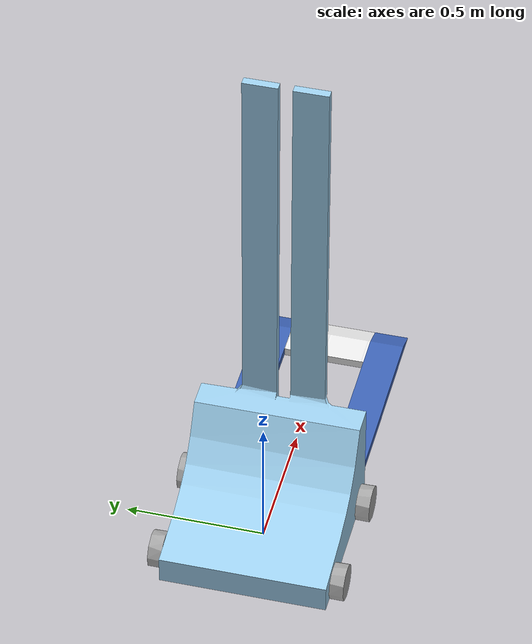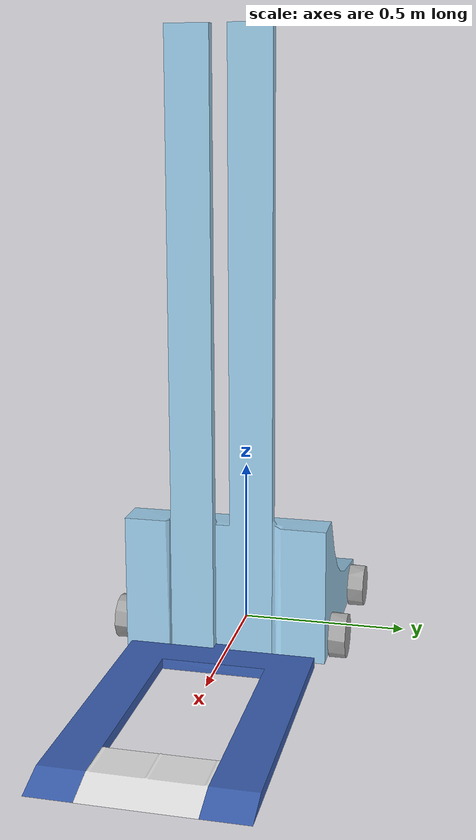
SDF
<?xml version="1.0" ?>
<!-- Generated using onshape-to-robot -->
<!-- Onshape https://cad.onshape.com/documents/f21e4e7fa37d441c582a939b/w/88593c83c7507020b659a8e4/e/9b3ba83a22e3af9be643551f -->
<sdf version="1.7">
  <model name="forklift">
    <plugin filename="ignition-gazebo-velocity-control-system"
        name="ignition::gazebo::systems::VelocityControl">
        <topic>model/forklift/cmd_vel</topic>
      </plugin>

    <frame name="lidar_frame" attached_to='body'>
      <pose>0.8 0 0.5 0 0 0</pose>
    </frame>
    <!-- Link body -->
    <link name="body">
      <inertial>
        <pose>0.108872 -1.9711e-07 0.248955 0 0 0</pose>
        <mass>5000</mass>
        <inertia>
          <ixx>743.717</ixx>
          <ixy>7.94891e-06</ixy>
          <ixz>-149.673</ixz>
          <iyy>759.431</iyy>
          <iyz>0.00072338</iyz>
          <izz>282.509</izz>
        </inertia>
      </inertial>
      <pose>0 0 0 0 -0 0</pose>

    <sensor name='gpu_lidar' type='gpu_lidar'>
    <plugin name="gazebo_ros_ray_sensor" filename="libgazebo_ros_ray_sensor.so">
    <pose >1.7 0 0.5 0 0 0</pose>
    <topic>lidar</topic>
    <update_rate>1000</update_rate>
    <ray>
        <scan>
            <horizontal>
                <samples>640</samples>
                <resolution>1</resolution>
                <min_angle>-1.396263</min_angle>
                <max_angle>1.396263</max_angle>
            </horizontal>
            <vertical>
                <samples>1</samples>
                <resolution>0.01</resolution>
                <min_angle>0</min_angle>
                <max_angle>0</max_angle>
            </vertical>
        </scan>
        <range>
            <min>0.08</min>
            <max>10.0</max>
            <resolution>0.01</resolution>
        </range>
    </ray>
    <always_on>1</always_on>
    <visualize>true</visualize>
    </plugin>
    </sensor>

      <!-- Part body -->
      <visual name="body_visual_mesh_1">
        <pose relative_to="body">-0.00799562 -3.71942e-17 0 0 -0 0</pose>
        <geometry>
          <mesh>
            <uri>model://forklift/assets/body1.stl</uri>
          </mesh>
        </geometry>
        <material>
          <ambient>0.615686 0.811765 0.929412 1</ambient>
          <diffuse>0.615686 0.811765 0.929412 1</diffuse>
          <specular>0.1 0.1 0.1 1</specular>
          <emissive>0 0 0 0</emissive>
        </material>
      </visual>
      <collision name="body_collision_mesh_2">
        <pose relative_to="body">-0.00799562 -3.71942e-17 0 0 -0 0</pose>
        <geometry>
          <mesh>
            <uri>model://forklift/assets/body1.stl</uri>
          </mesh>
        </geometry>
      </collision>
    </link>

    <!-- NavSatSensor Link (GPS) -->
    <link name="gps_link">
      <pose>0 0 1.2 0 0 0</pose>
      <inertial>
        <mass>0.01</mass>
        <inertia>
          <ixx>0.00001</ixx>
          <ixy>0</ixy>
          <ixz>0</ixz>
          <iyy>0.00001</iyy>
          <iyz>0</iyz>
          <izz>0.00001</izz>
        </inertia>
      </inertial>
      <sensor name="navsat_sensor" type="navsat">
        <pose>0 0 0 0 0 0</pose>
        <always_on>1</always_on>
        <update_rate>1</update_rate>
        <visualize>false</visualize>
        <topic>forklift_pos</topic>
        <navsat>
          <noise>
            <type>gaussian</type>
            <mean>0.0</mean>
            <stddev>0.00001</stddev>
          </noise>
        </navsat>
      </sensor>
    </link>

    <joint name="gps_joint" type="fixed">
      <parent>body</parent>
      <child>gps_link</child>
      <pose>0 0 0 0 0 0</pose>
    </joint>

    <link name="camera_link">
      <sensor name="camera" type="camera">
          <camera>
            <horizontal_fov>1.047</horizontal_fov>
            <image>
              <width>640</width>
              <height>480</height>
            </image>
            <clip>
              <near>0.1</near>
              <far>100</far>
            </clip>
          </camera>
          <always_on>1</always_on>
          <update_rate>30</update_rate>
          <visualize>true</visualize>
          <topic>camera</topic>
        </sensor>
      </link>

    <!-- Joint from body to camera -->
    <joint name="camera_joint" type="fixed">
      <pose relative_to="fork">0.0 0.0 0.4 0 0 0</pose>
      <parent>fork</parent>
      <child>camera_link</child>
    </joint>

    <!-- Link wheel -->
    <link name="wheel">
      <inertial>
        <pose>-2.21045e-15 -2.33218e-16 -0.0703848 0 0 0</pose>
        <mass>0.816749</mass>
        <inertia>
          <ixx>0.0011595</ixx>
          <ixy>0</ixy>
          <ixz>0</ixz>
          <iyy>0.0011595</iyy>
          <iyz>0</iyz>
          <izz>0.00147113</izz>
        </inertia>
      </inertial>
      <pose relative_to="leftFrontWheel">0 0 0 0 -0 0</pose>
      <!-- Part wheel -->
      <visual name="wheel_visual_mesh_1">
        <pose relative_to="wheel">0 0 -0.1025 -1.5708 -0 0</pose>
        <geometry>
          <mesh>
            <uri>model://forklift/assets/wheel1.stl</uri>
          </mesh>
        </geometry>
        <material>
          <ambient>0.647059 0.647059 0.647059 1</ambient>
          <diffuse>0.647059 0.647059 0.647059 1</diffuse>
          <specular>0.1 0.1 0.1 1</specular>
          <emissive>0 0 0 0</emissive>
        </material>
      </visual>
      <collision name="wheel_collision_mesh_2">
        <pose relative_to="wheel">0 0 -0.1025 -1.5708 -0 0</pose>
        <geometry>
          <mesh>
            <uri>model://forklift/assets/wheel1.stl</uri>
          </mesh>
        </geometry>
      </collision>
    </link>

    <!-- Joint from body to wheel -->
    <joint name="leftFrontWheel" type="revolute">
      <pose relative_to="body">0.192004 0.25 0.05 1.5708 -0 0</pose>
      <parent>body</parent>
      <child>wheel</child>
      <axis>
        <xyz>0 0 1</xyz>
        <limit>
          <effort>10</effort>
          <velocity>10</velocity>
          <lower>-3.141592653589793</lower>
          <upper>3.141592653589793</upper>
        </limit>
        <dynamics>
          <friction>0.0</friction>
          <damping>0.0</damping>
        </dynamics>
      </axis>
    </joint>

    <!-- Link wheel_2 -->
    <link name="wheel_2">
      <inertial>
        <pose>-2.21045e-15 -2.33218e-16 -0.0703848 0 0 0</pose>
        <mass>0.816749</mass>
        <inertia>
          <ixx>0.0011595</ixx>
          <ixy>0</ixy>
          <ixz>0</ixz>
          <iyy>0.0011595</iyy>
          <iyz>0</iyz>
          <izz>0.00147113</izz>
        </inertia>
      </inertial>
      <pose relative_to="leftBackWheel">0 0 0 0 -0 0</pose>
      <!-- Part wheel_2 -->
      <visual name="wheel_2_visual_mesh_1">
        <pose relative_to="wheel_2">0 0 -0.1025 -1.5708 -0 0</pose>
        <geometry>
          <mesh>
            <uri>model://forklift/assets/wheel1.stl</uri>
          </mesh>
        </geometry>
        <material>
          <ambient>0.647059 0.647059 0.647059 1</ambient>
          <diffuse>0.647059 0.647059 0.647059 1</diffuse>
          <specular>0.1 0.1 0.1 1</specular>
          <emissive>0 0 0 0</emissive>
        </material>
      </visual>
      <collision name="wheel_2_collision_mesh_2">
        <pose relative_to="wheel_2">0 0 -0.1025 -1.5708 -0 0</pose>
        <geometry>
          <mesh>
            <uri>model://forklift/assets/wheel1.stl</uri>
          </mesh>
        </geometry>
      </collision>
    </link>

    <!-- Joint from body to wheel_2 -->
    <joint name="leftBackWheel" type="revolute">
      <pose relative_to="body">-0.207996 0.25 0.05 1.5708 -0 0</pose>
      <parent>body</parent>
      <child>wheel_2</child>
      <axis>
        <xyz>0 0 1</xyz>
        <limit>
          <effort>10</effort>
          <velocity>10</velocity>
          <lower>-3.141592653589793</lower>
          <upper>3.141592653589793</upper>
        </limit>
        <dynamics>
          <friction>0.0</friction>
          <damping>0.0</damping>
        </dynamics>
      </axis>
    </joint>

    <!-- Link wheel_3 -->
    <link name="wheel_3">
      <inertial>
        <pose>-2.21045e-15 -2.33218e-16 -0.0703848 0 0 0</pose>
        <mass>0.816749</mass>
        <inertia>
          <ixx>0.0011595</ixx>
          <ixy>0</ixy>
          <ixz>0</ixz>
          <iyy>0.0011595</iyy>
          <iyz>0</iyz>
          <izz>0.00147113</izz>
        </inertia>
      </inertial>
      <pose relative_to="rightFrontWheel">0 0 0 0 -0 0</pose>
      <!-- Part wheel_3 -->
      <visual name="wheel_3_visual_mesh_1">
        <pose relative_to="wheel_3">0 0 -0.1025 -1.5708 -0 0</pose>
        <geometry>
          <mesh>
            <uri>model://forklift/assets/wheel1.stl</uri>
          </mesh>
        </geometry>
        <material>
          <ambient>0.647059 0.647059 0.647059 1</ambient>
          <diffuse>0.647059 0.647059 0.647059 1</diffuse>
          <specular>0.1 0.1 0.1 1</specular>
          <emissive>0 0 0 0</emissive>
        </material>
      </visual>
      <collision name="wheel_3_collision_mesh_2">
        <pose relative_to="wheel_3">0 0 -0.1025 -1.5708 -0 0</pose>
        <geometry>
          <mesh>
            <uri>model://forklift/assets/wheel1.stl</uri>
          </mesh>
        </geometry>
      </collision>
    </link>

    <!-- Joint from body to wheel_3 -->
    <joint name="rightFrontWheel" type="revolute">
      <pose relative_to="body">0.192004 -0.25 0.05 -1.5708 -0 0</pose>
      <parent>body</parent>
      <child>wheel_3</child>
      <axis>
        <xyz>0 0 1</xyz>
        <limit>
          <effort>10</effort>
          <velocity>10</velocity>
          <lower>-3.141592653589793</lower>
          <upper>3.141592653589793</upper>
        </limit>
        <dynamics>
          <friction>0.0</friction>
          <damping>0.0</damping>
        </dynamics>
      </axis>
    </joint>

    <!-- Link wheel_4 -->
    <link name="wheel_4">
      <inertial>
        <pose>-2.21045e-15 -2.33218e-16 -0.0703848 0 0 0</pose>
        <mass>0.816749</mass>
        <inertia>
          <ixx>0.0011595</ixx>
          <ixy>0</ixy>
          <ixz>0</ixz>
          <iyy>0.0011595</iyy>
          <iyz>0</iyz>
          <izz>0.00147113</izz>
        </inertia>
      </inertial>
      <pose relative_to="rightBackWheel">0 0 0 0 -0 0</pose>
      <!-- Part wheel_4 -->
      <visual name="wheel_4_visual_mesh_1">
        <pose relative_to="wheel_4">0 0 -0.1025 -1.5708 -0 0</pose>
        <geometry>
          <mesh>
            <uri>model://forklift/assets/wheel1.stl</uri>
          </mesh>
        </geometry>
        <material>
          <ambient>0.647059 0.647059 0.647059 1</ambient>
          <diffuse>0.647059 0.647059 0.647059 1</diffuse>
          <specular>0.1 0.1 0.1 1</specular>
          <emissive>0 0 0 0</emissive>
        </material>
      </visual>
      <collision name="wheel_4_collision_mesh_2">
        <pose relative_to="wheel_4">0 0 -0.1025 -1.5708 -0 0</pose>
        <geometry>
          <mesh>
            <uri>model://forklift/assets/wheel1.stl</uri>
          </mesh>
        </geometry>
      </collision>
    </link>

    <!-- Joint from body to wheel_4 -->
    <joint name="rightBackWheel" type="revolute">
      <pose relative_to="body">-0.207996 -0.25 0.05 -1.5708 -0 0</pose>
      <parent>body</parent>
      <child>wheel_4</child>
      <axis>
        <xyz>0 0 1</xyz>
        <limit>
          <effort>10</effort>
          <velocity>10</velocity>
          <lower>-3.141592653589793</lower>
          <upper>3.141592653589793</upper>
        </limit>
        <dynamics>
          <friction>0.0</friction>
          <damping>0.0</damping>
        </dynamics>
      </axis>
    </joint>

    <!-- Link fork -->
    <link name="fork">
      <inertial>
        <pose>0.0 0.0 -0.015 0 0 0</pose>
        <mass>17.7929</mass>
        <inertia>
          <ixx>0.728234</ixx>
          <ixy>-7.49898e-16</ixy>
          <ixz>-0.00181882</ixz>
          <iyy>0.978226</iyy>
          <iyz>3.57919e-18</iyz>
          <izz>1.70379</izz>
        </inertia>
      </inertial>
      <pose relative_to="lift">0 0 0 0 -0 0</pose>
      <!-- Part fork -->
      <visual name="fork_visual_mesh_1">
        <pose relative_to="fork">-0.015 0.0 0.0 3.14159 -0 -0</pose>
        <geometry>
          <mesh>
            <uri>model://forklift/assets/fork1.stl</uri>
          </mesh>
        </geometry>
        <material>
          <ambient>0.231373 0.380392 0.705882 1</ambient>
          <diffuse>0.231373 0.380392 0.705882 1</diffuse>
          <specular>0.1 0.1 0.1 1</specular>
          <emissive>0 0 0 0</emissive>
        </material>
      </visual>
      <collision name="fork_collision_mesh_2">
        <pose relative_to="fork">-0.015 0 0 3.14159 -0 -0</pose>
        <geometry>
          <mesh>
            <uri>model://forklift/assets/fork1.stl</uri>
          </mesh>
        </geometry>
      </collision>
    </link>

    <!-- Link carriage -->
    <link name="carriage">
      <inertial>
        <pose>-8.35942e-17 0.00139856 0.08 0 0 0</pose>
        <mass>1.57882</mass>
        <inertia>
          <ixx>0.00384031</ixx>
          <ixy>3.60906e-54</ixy>
          <ixz>2.66143e-50</ixz>
          <iyy>0.015562</iyy>
          <iyz>0.000168789</iyz>
          <izz>0.0119604</izz>
        </inertia>
      </inertial>
      <pose relative_to="forkSlider">0 0 0 0 -0 0</pose>
      <!-- Part carriage -->
      <visual name="carriage_visual_mesh_1">
        <pose relative_to="carriage">-7.40575e-17 0.0152514 0 1.5708 1.5708 0</pose>
        <geometry>
          <mesh>
            <uri>model://forklift/assets/carriage1.stl</uri>
          </mesh>
        </geometry>
        <material>
          <ambient>0.917647 0.917647 0.917647 1</ambient>
          <diffuse>0.917647 0.917647 0.917647 1</diffuse>
          <specular>0.1 0.1 0.1 1</specular>
          <emissive>0 0 0 0</emissive>
        </material>
      </visual>
      <collision name="carriage_collision_mesh_2">
        <pose relative_to="carriage">-7.40575e-17 0.0152514 0 1.5708 1.5708 0</pose>
        <geometry>
          <mesh>
            <uri>model://forklift/assets/carriage1.stl</uri>
          </mesh>
        </geometry>
      </collision>
    </link>

    <!-- Joint from fork to carriage -->
    <joint name="forkSlider" type="prismatic">
      <pose relative_to="fork">0.615 1.27389e-18 -0.015 1.5708 -4.93295e-18 -1.5708</pose>
      <parent>fork</parent>
      <child>carriage</child>
      <axis>
        <xyz>0 0 1</xyz>
        <limit>
          <effort>10</effort>
          <velocity>10</velocity>
          <lower>-1.1102230246251565e-16</lower>
          <upper>0.4999999999999999</upper>
        </limit>
        <dynamics>
          <friction>0.0</friction>
          <damping>0.0</damping>
        </dynamics>
      </axis>
    </joint>

    <!-- Joint from body to fork -->
    <joint name="lift" type="prismatic">
      <pose relative_to="body">0.307004 -2.8844e-16 0.001 3.14159 -0 0</pose>
      <parent>body</parent>
      <child>fork</child>
      <axis>
        <xyz>0 0 1</xyz>
        <limit>
          <effort>10</effort>
          <velocity>10</velocity>
          <lower>-1.75</lower>
          <upper>0.0</upper>
        </limit>
        <dynamics>
          <friction>0.0</friction>
          <damping>0.0</damping>
        </dynamics>
      </axis>
    </joint>
  </model>
</sdf>
